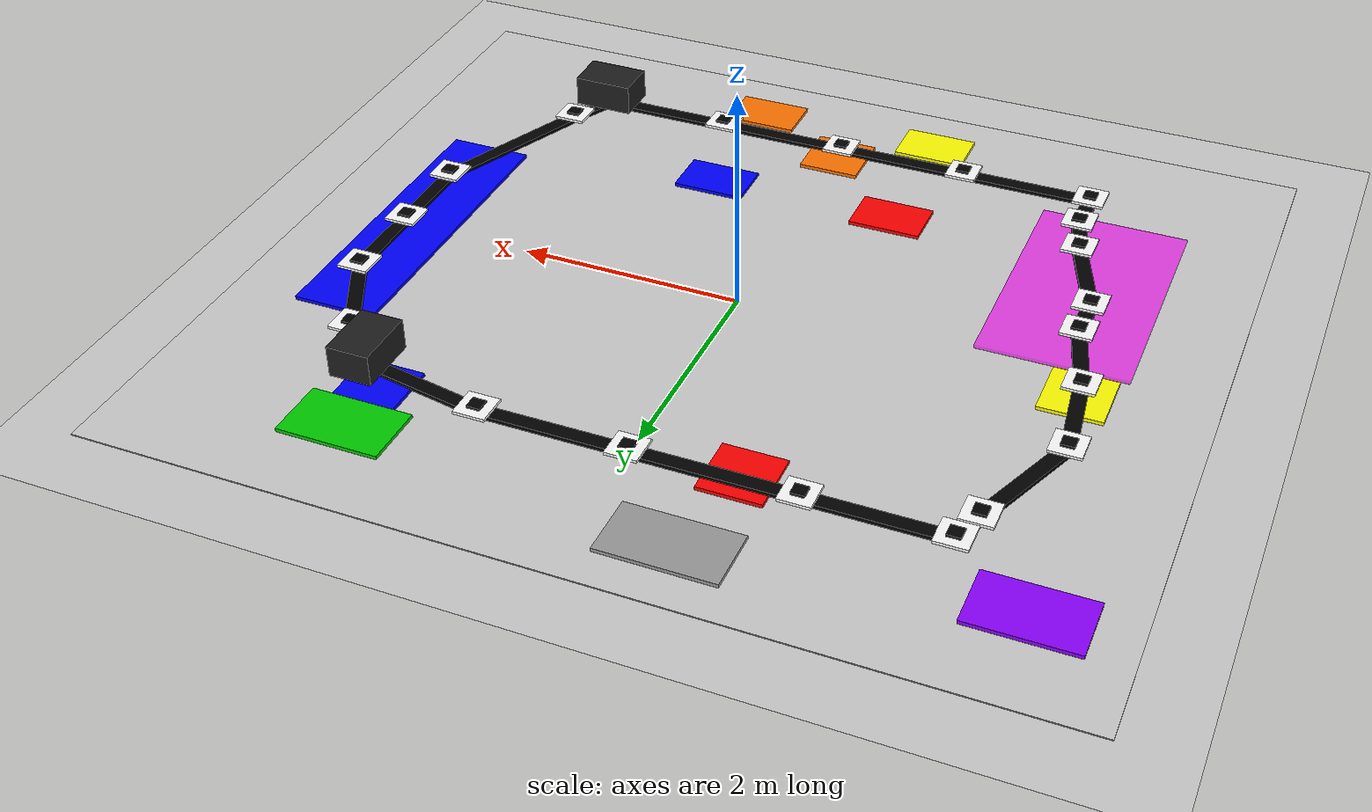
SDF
<?xml version="1.0" ?>
<sdf version="1.6">
  <world name="agv_factory_world">

    <include>
      <uri>model://sun</uri>
    </include>

    <include>
      <uri>model://ground_plane</uri>
    </include>

    <model name="map_base">
      <static>true</static>
      <pose>0.000 0.000 0.005 0 0 0.000</pose>
      <link name="link">
        <visual name="visual">
          <geometry>
            <box>
              <size>8.200 7.200 0.010</size>
            </box>
          </geometry>

          <material>
            <ambient>0.8 0.8 0.8 1</ambient>
            <diffuse>0.8 0.8 0.8 1</diffuse>
          </material>
        </visual>
        <collision name="collision">
          <geometry>
            <box>
              <size>8.200 7.200 0.010</size>
            </box>
          </geometry>
        </collision>
      </link>
    </model>

    <model name="inout_zone">
      <static>true</static>
      <pose>-3.300 2.700 0.025 0 0 0.000</pose>
      <link name="link">
        <visual name="visual">
          <geometry>
            <box>
              <size>0.900 0.550 0.035</size>
            </box>
          </geometry>

          <material>
            <ambient>0.55 0 1 1</ambient>
            <diffuse>0.55 0 1 1</diffuse>
          </material>
        </visual>
        <collision name="collision">
          <geometry>
            <box>
              <size>0.900 0.550 0.035</size>
            </box>
          </geometry>
        </collision>
      </link>
    </model>

    <model name="final_box_zone">
      <static>true</static>
      <pose>-0.700 3.000 0.025 0 0 0.000</pose>
      <link name="link">
        <visual name="visual">
          <geometry>
            <box>
              <size>1.000 0.550 0.035</size>
            </box>
          </geometry>

          <material>
            <ambient>0.6 0.6 0.6 1</ambient>
            <diffuse>0.6 0.6 0.6 1</diffuse>
          </material>
        </visual>
        <collision name="collision">
          <geometry>
            <box>
              <size>1.000 0.550 0.035</size>
            </box>
          </geometry>
        </collision>
      </link>
    </model>

    <model name="part_pickup_zone">
      <static>true</static>
      <pose>2.200 2.700 0.025 0 0 0.000</pose>
      <link name="link">
        <visual name="visual">
          <geometry>
            <box>
              <size>0.900 0.550 0.035</size>
            </box>
          </geometry>

          <material>
            <ambient>0 0.8 0 1</ambient>
            <diffuse>0 0.8 0 1</diffuse>
          </material>
        </visual>
        <collision name="collision">
          <geometry>
            <box>
              <size>0.900 0.550 0.035</size>
            </box>
          </geometry>
        </collision>
      </link>
    </model>

    <model name="red_zone">
      <static>true</static>
      <pose>-0.900 2.100 0.025 0 0 0.000</pose>
      <link name="link">
        <visual name="visual">
          <geometry>
            <box>
              <size>0.550 0.550 0.035</size>
            </box>
          </geometry>

          <material>
            <ambient>1 0 0 1</ambient>
            <diffuse>1 0 0 1</diffuse>
          </material>
        </visual>
        <collision name="collision">
          <geometry>
            <box>
              <size>0.550 0.550 0.035</size>
            </box>
          </geometry>
        </collision>
      </link>
    </model>

    <model name="blue_zone">
      <static>true</static>
      <pose>2.200 2.200 0.025 0 0 0.000</pose>
      <link name="link">
        <visual name="visual">
          <geometry>
            <box>
              <size>0.550 0.550 0.035</size>
            </box>
          </geometry>

          <material>
            <ambient>0 0 1 1</ambient>
            <diffuse>0 0 1 1</diffuse>
          </material>
        </visual>
        <collision name="collision">
          <geometry>
            <box>
              <size>0.550 0.550 0.035</size>
            </box>
          </geometry>
        </collision>
      </link>
    </model>

    <model name="yellow_zone">
      <static>true</static>
      <pose>-3.000 0.200 0.025 0 0 0.000</pose>
      <link name="link">
        <visual name="visual">
          <geometry>
            <box>
              <size>0.550 0.550 0.035</size>
            </box>
          </geometry>

          <material>
            <ambient>1 1 0 1</ambient>
            <diffuse>1 1 0 1</diffuse>
          </material>
        </visual>
        <collision name="collision">
          <geometry>
            <box>
              <size>0.550 0.550 0.035</size>
            </box>
          </geometry>
        </collision>
      </link>
    </model>

    <model name="orange_zone">
      <static>true</static>
      <pose>0.000 -2.500 0.025 0 0 0.000</pose>
      <link name="link">
        <visual name="visual">
          <geometry>
            <box>
              <size>0.550 0.550 0.035</size>
            </box>
          </geometry>

          <material>
            <ambient>1 0.45 0 1</ambient>
            <diffuse>1 0.45 0 1</diffuse>
          </material>
        </visual>
        <collision name="collision">
          <geometry>
            <box>
              <size>0.550 0.550 0.035</size>
            </box>
          </geometry>
        </collision>
      </link>
    </model>

    <model name="a_part_zone">
      <static>true</static>
      <pose>-0.800 -1.700 0.025 0 0 0.000</pose>
      <link name="link">
        <visual name="visual">
          <geometry>
            <box>
              <size>0.650 0.450 0.035</size>
            </box>
          </geometry>

          <material>
            <ambient>1 0 0 1</ambient>
            <diffuse>1 0 0 1</diffuse>
          </material>
        </visual>
        <collision name="collision">
          <geometry>
            <box>
              <size>0.650 0.450 0.035</size>
            </box>
          </geometry>
        </collision>
      </link>
    </model>

    <model name="b_part_zone">
      <static>true</static>
      <pose>0.900 -1.700 0.025 0 0 0.000</pose>
      <link name="link">
        <visual name="visual">
          <geometry>
            <box>
              <size>0.650 0.450 0.035</size>
            </box>
          </geometry>

          <material>
            <ambient>0 0 1 1</ambient>
            <diffuse>0 0 1 1</diffuse>
          </material>
        </visual>
        <collision name="collision">
          <geometry>
            <box>
              <size>0.650 0.450 0.035</size>
            </box>
          </geometry>
        </collision>
      </link>
    </model>

    <model name="c_part_zone">
      <static>true</static>
      <pose>-0.800 -3.000 0.025 0 0 0.000</pose>
      <link name="link">
        <visual name="visual">
          <geometry>
            <box>
              <size>0.650 0.450 0.035</size>
            </box>
          </geometry>

          <material>
            <ambient>1 1 0 1</ambient>
            <diffuse>1 1 0 1</diffuse>
          </material>
        </visual>
        <collision name="collision">
          <geometry>
            <box>
              <size>0.650 0.450 0.035</size>
            </box>
          </geometry>
        </collision>
      </link>
    </model>

    <model name="d_part_zone">
      <static>true</static>
      <pose>0.900 -3.000 0.025 0 0 0.000</pose>
      <link name="link">
        <visual name="visual">
          <geometry>
            <box>
              <size>0.650 0.450 0.035</size>
            </box>
          </geometry>

          <material>
            <ambient>1 0.45 0 1</ambient>
            <diffuse>1 0.45 0 1</diffuse>
          </material>
        </visual>
        <collision name="collision">
          <geometry>
            <box>
              <size>0.650 0.450 0.035</size>
            </box>
          </geometry>
        </collision>
      </link>
    </model>

    <model name="container_zone">
      <static>true</static>
      <pose>3.100 0.000 0.025 0 0 0.000</pose>
      <link name="link">
        <visual name="visual">
          <geometry>
            <box>
              <size>0.750 2.800 0.035</size>
            </box>
          </geometry>

          <material>
            <ambient>0 0 1 1</ambient>
            <diffuse>0 0 1 1</diffuse>
          </material>
        </visual>
        <collision name="collision">
          <geometry>
            <box>
              <size>0.750 2.800 0.035</size>
            </box>
          </geometry>
        </collision>
      </link>
    </model>

    <model name="cross_zone">
      <static>true</static>
      <pose>-2.700 -1.200 0.040 0 0 0.000</pose>
      <link name="link">
        <visual name="visual">
          <geometry>
            <box>
              <size>1.300 2.200 0.030</size>
            </box>
          </geometry>

          <material>
            <ambient>1 0 1 0.65</ambient>
            <diffuse>1 0 1 0.65</diffuse>
          </material>
        </visual>
        <collision name="collision">
          <geometry>
            <box>
              <size>1.300 2.200 0.030</size>
            </box>
          </geometry>
        </collision>
      </link>
    </model>

    <model name="road_top_1">
      <static>true</static>
      <pose>-2.000 2.200 0.055 0 0 0.000</pose>
      <link name="link">
        <visual name="visual">
          <geometry>
            <box>
              <size>1.200 0.130 0.035</size>
            </box>
          </geometry>

          <material>
            <ambient>0 0 0 1</ambient>
            <diffuse>0 0 0 1</diffuse>
          </material>
        </visual>
        <collision name="collision">
          <geometry>
            <box>
              <size>1.200 0.130 0.035</size>
            </box>
          </geometry>
        </collision>
      </link>
    </model>

    <model name="road_top_2">
      <static>true</static>
      <pose>-0.700 2.200 0.055 0 0 0.000</pose>
      <link name="link">
        <visual name="visual">
          <geometry>
            <box>
              <size>1.400 0.130 0.035</size>
            </box>
          </geometry>

          <material>
            <ambient>0 0 0 1</ambient>
            <diffuse>0 0 0 1</diffuse>
          </material>
        </visual>
        <collision name="collision">
          <geometry>
            <box>
              <size>1.400 0.130 0.035</size>
            </box>
          </geometry>
        </collision>
      </link>
    </model>

    <model name="road_top_3">
      <static>true</static>
      <pose>0.650 2.200 0.055 0 0 0.000</pose>
      <link name="link">
        <visual name="visual">
          <geometry>
            <box>
              <size>1.300 0.130 0.035</size>
            </box>
          </geometry>

          <material>
            <ambient>0 0 0 1</ambient>
            <diffuse>0 0 0 1</diffuse>
          </material>
        </visual>
        <collision name="collision">
          <geometry>
            <box>
              <size>1.300 0.130 0.035</size>
            </box>
          </geometry>
        </collision>
      </link>
    </model>

    <model name="road_top_4">
      <static>true</static>
      <pose>1.850 2.100 0.055 0 0 -0.180</pose>
      <link name="link">
        <visual name="visual">
          <geometry>
            <box>
              <size>1.118 0.130 0.035</size>
            </box>
          </geometry>

          <material>
            <ambient>0 0 0 1</ambient>
            <diffuse>0 0 0 1</diffuse>
          </material>
        </visual>
        <collision name="collision">
          <geometry>
            <box>
              <size>1.118 0.130 0.035</size>
            </box>
          </geometry>
        </collision>
      </link>
    </model>

    <model name="road_top_5">
      <static>true</static>
      <pose>2.600 1.800 0.055 0 0 -0.785</pose>
      <link name="link">
        <visual name="visual">
          <geometry>
            <box>
              <size>0.566 0.130 0.035</size>
            </box>
          </geometry>

          <material>
            <ambient>0 0 0 1</ambient>
            <diffuse>0 0 0 1</diffuse>
          </material>
        </visual>
        <collision name="collision">
          <geometry>
            <box>
              <size>0.566 0.130 0.035</size>
            </box>
          </geometry>
        </collision>
      </link>
    </model>

    <model name="road_right_6">
      <static>true</static>
      <pose>3.000 1.200 0.055 0 0 -1.107</pose>
      <link name="link">
        <visual name="visual">
          <geometry>
            <box>
              <size>0.894 0.130 0.035</size>
            </box>
          </geometry>

          <material>
            <ambient>0 0 0 1</ambient>
            <diffuse>0 0 0 1</diffuse>
          </material>
        </visual>
        <collision name="collision">
          <geometry>
            <box>
              <size>0.894 0.130 0.035</size>
            </box>
          </geometry>
        </collision>
      </link>
    </model>

    <model name="road_right_7">
      <static>true</static>
      <pose>3.200 0.400 0.055 0 0 -1.571</pose>
      <link name="link">
        <visual name="visual">
          <geometry>
            <box>
              <size>0.800 0.130 0.035</size>
            </box>
          </geometry>

          <material>
            <ambient>0 0 0 1</ambient>
            <diffuse>0 0 0 1</diffuse>
          </material>
        </visual>
        <collision name="collision">
          <geometry>
            <box>
              <size>0.800 0.130 0.035</size>
            </box>
          </geometry>
        </collision>
      </link>
    </model>

    <model name="road_right_8">
      <static>true</static>
      <pose>3.200 -0.400 0.055 0 0 -1.571</pose>
      <link name="link">
        <visual name="visual">
          <geometry>
            <box>
              <size>0.800 0.130 0.035</size>
            </box>
          </geometry>

          <material>
            <ambient>0 0 0 1</ambient>
            <diffuse>0 0 0 1</diffuse>
          </material>
        </visual>
        <collision name="collision">
          <geometry>
            <box>
              <size>0.800 0.130 0.035</size>
            </box>
          </geometry>
        </collision>
      </link>
    </model>

    <model name="road_right_9">
      <static>true</static>
      <pose>2.900 -1.500 0.055 0 0 -1.976</pose>
      <link name="link">
        <visual name="visual">
          <geometry>
            <box>
              <size>1.523 0.130 0.035</size>
            </box>
          </geometry>

          <material>
            <ambient>0 0 0 1</ambient>
            <diffuse>0 0 0 1</diffuse>
          </material>
        </visual>
        <collision name="collision">
          <geometry>
            <box>
              <size>1.523 0.130 0.035</size>
            </box>
          </geometry>
        </collision>
      </link>
    </model>

    <model name="road_right_10">
      <static>true</static>
      <pose>2.500 -2.400 0.055 0 0 -2.034</pose>
      <link name="link">
        <visual name="visual">
          <geometry>
            <box>
              <size>0.447 0.130 0.035</size>
            </box>
          </geometry>

          <material>
            <ambient>0 0 0 1</ambient>
            <diffuse>0 0 0 1</diffuse>
          </material>
        </visual>
        <collision name="collision">
          <geometry>
            <box>
              <size>0.447 0.130 0.035</size>
            </box>
          </geometry>
        </collision>
      </link>
    </model>

    <model name="road_bottom_11">
      <static>true</static>
      <pose>1.800 -2.600 0.055 0 0 3.142</pose>
      <link name="link">
        <visual name="visual">
          <geometry>
            <box>
              <size>1.200 0.130 0.035</size>
            </box>
          </geometry>

          <material>
            <ambient>0 0 0 1</ambient>
            <diffuse>0 0 0 1</diffuse>
          </material>
        </visual>
        <collision name="collision">
          <geometry>
            <box>
              <size>1.200 0.130 0.035</size>
            </box>
          </geometry>
        </collision>
      </link>
    </model>

    <model name="road_bottom_12">
      <static>true</static>
      <pose>0.600 -2.600 0.055 0 0 3.142</pose>
      <link name="link">
        <visual name="visual">
          <geometry>
            <box>
              <size>1.200 0.130 0.035</size>
            </box>
          </geometry>

          <material>
            <ambient>0 0 0 1</ambient>
            <diffuse>0 0 0 1</diffuse>
          </material>
        </visual>
        <collision name="collision">
          <geometry>
            <box>
              <size>1.200 0.130 0.035</size>
            </box>
          </geometry>
        </collision>
      </link>
    </model>

    <model name="road_bottom_13">
      <static>true</static>
      <pose>-0.600 -2.600 0.055 0 0 3.142</pose>
      <link name="link">
        <visual name="visual">
          <geometry>
            <box>
              <size>1.200 0.130 0.035</size>
            </box>
          </geometry>

          <material>
            <ambient>0 0 0 1</ambient>
            <diffuse>0 0 0 1</diffuse>
          </material>
        </visual>
        <collision name="collision">
          <geometry>
            <box>
              <size>1.200 0.130 0.035</size>
            </box>
          </geometry>
        </collision>
      </link>
    </model>

    <model name="road_bottom_14">
      <static>true</static>
      <pose>-1.800 -2.600 0.055 0 0 3.142</pose>
      <link name="link">
        <visual name="visual">
          <geometry>
            <box>
              <size>1.200 0.130 0.035</size>
            </box>
          </geometry>

          <material>
            <ambient>0 0 0 1</ambient>
            <diffuse>0 0 0 1</diffuse>
          </material>
        </visual>
        <collision name="collision">
          <geometry>
            <box>
              <size>1.200 0.130 0.035</size>
            </box>
          </geometry>
        </collision>
      </link>
    </model>

    <model name="road_bottom_15">
      <static>true</static>
      <pose>-2.400 -2.400 0.055 0 0 1.571</pose>
      <link name="link">
        <visual name="visual">
          <geometry>
            <box>
              <size>0.400 0.130 0.035</size>
            </box>
          </geometry>

          <material>
            <ambient>0 0 0 1</ambient>
            <diffuse>0 0 0 1</diffuse>
          </material>
        </visual>
        <collision name="collision">
          <geometry>
            <box>
              <size>0.400 0.130 0.035</size>
            </box>
          </geometry>
        </collision>
      </link>
    </model>

    <model name="road_left_16">
      <static>true</static>
      <pose>-2.450 -2.000 0.055 0 0 1.816</pose>
      <link name="link">
        <visual name="visual">
          <geometry>
            <box>
              <size>0.412 0.130 0.035</size>
            </box>
          </geometry>

          <material>
            <ambient>0 0 0 1</ambient>
            <diffuse>0 0 0 1</diffuse>
          </material>
        </visual>
        <collision name="collision">
          <geometry>
            <box>
              <size>0.412 0.130 0.035</size>
            </box>
          </geometry>
        </collision>
      </link>
    </model>

    <model name="road_left_17">
      <static>true</static>
      <pose>-2.650 -1.400 0.055 0 0 1.930</pose>
      <link name="link">
        <visual name="visual">
          <geometry>
            <box>
              <size>0.854 0.130 0.035</size>
            </box>
          </geometry>

          <material>
            <ambient>0 0 0 1</ambient>
            <diffuse>0 0 0 1</diffuse>
          </material>
        </visual>
        <collision name="collision">
          <geometry>
            <box>
              <size>0.854 0.130 0.035</size>
            </box>
          </geometry>
        </collision>
      </link>
    </model>

    <model name="road_left_18">
      <static>true</static>
      <pose>-2.800 -0.800 0.055 0 0 1.571</pose>
      <link name="link">
        <visual name="visual">
          <geometry>
            <box>
              <size>0.400 0.130 0.035</size>
            </box>
          </geometry>

          <material>
            <ambient>0 0 0 1</ambient>
            <diffuse>0 0 0 1</diffuse>
          </material>
        </visual>
        <collision name="collision">
          <geometry>
            <box>
              <size>0.400 0.130 0.035</size>
            </box>
          </geometry>
        </collision>
      </link>
    </model>

    <model name="road_left_19">
      <static>true</static>
      <pose>-2.900 -0.250 0.055 0 0 1.849</pose>
      <link name="link">
        <visual name="visual">
          <geometry>
            <box>
              <size>0.728 0.130 0.035</size>
            </box>
          </geometry>

          <material>
            <ambient>0 0 0 1</ambient>
            <diffuse>0 0 0 1</diffuse>
          </material>
        </visual>
        <collision name="collision">
          <geometry>
            <box>
              <size>0.728 0.130 0.035</size>
            </box>
          </geometry>
        </collision>
      </link>
    </model>

    <model name="road_left_20">
      <static>true</static>
      <pose>-3.050 0.500 0.055 0 0 1.695</pose>
      <link name="link">
        <visual name="visual">
          <geometry>
            <box>
              <size>0.806 0.130 0.035</size>
            </box>
          </geometry>

          <material>
            <ambient>0 0 0 1</ambient>
            <diffuse>0 0 0 1</diffuse>
          </material>
        </visual>
        <collision name="collision">
          <geometry>
            <box>
              <size>0.806 0.130 0.035</size>
            </box>
          </geometry>
        </collision>
      </link>
    </model>

    <model name="road_left_21">
      <static>true</static>
      <pose>-2.900 1.400 0.055 0 0 1.190</pose>
      <link name="link">
        <visual name="visual">
          <geometry>
            <box>
              <size>1.077 0.130 0.035</size>
            </box>
          </geometry>

          <material>
            <ambient>0 0 0 1</ambient>
            <diffuse>0 0 0 1</diffuse>
          </material>
        </visual>
        <collision name="collision">
          <geometry>
            <box>
              <size>1.077 0.130 0.035</size>
            </box>
          </geometry>
        </collision>
      </link>
    </model>

    <model name="road_left_22">
      <static>true</static>
      <pose>-2.650 2.050 0.055 0 0 1.249</pose>
      <link name="link">
        <visual name="visual">
          <geometry>
            <box>
              <size>0.316 0.130 0.035</size>
            </box>
          </geometry>

          <material>
            <ambient>0 0 0 1</ambient>
            <diffuse>0 0 0 1</diffuse>
          </material>
        </visual>
        <collision name="collision">
          <geometry>
            <box>
              <size>0.316 0.130 0.035</size>
            </box>
          </geometry>
        </collision>
      </link>
    </model>

    <model name="QR_TOP_01">
      <static>true</static>
      <pose>-2.600 2.200 0.095 0 0 0.000</pose>
      <link name="link">
        <visual name="visual">
          <geometry>
            <box>
              <size>0.280 0.280 0.025</size>
            </box>
          </geometry>

          <material>
            <ambient>1 1 1 1</ambient>
            <diffuse>1 1 1 1</diffuse>
          </material>
        </visual>
        <collision name="collision">
          <geometry>
            <box>
              <size>0.280 0.280 0.025</size>
            </box>
          </geometry>
        </collision>
      </link>
    </model>

    <model name="QR_TOP_01_black">
      <static>true</static>
      <pose>-2.600 2.200 0.115 0 0 0.000</pose>
      <link name="link">
        <visual name="visual">
          <geometry>
            <box>
              <size>0.120 0.120 0.025</size>
            </box>
          </geometry>

          <material>
            <ambient>0 0 0 1</ambient>
            <diffuse>0 0 0 1</diffuse>
          </material>
        </visual>
        <collision name="collision">
          <geometry>
            <box>
              <size>0.120 0.120 0.025</size>
            </box>
          </geometry>
        </collision>
      </link>
    </model>

    <model name="QR_TOP_02">
      <static>true</static>
      <pose>-1.400 2.200 0.095 0 0 0.000</pose>
      <link name="link">
        <visual name="visual">
          <geometry>
            <box>
              <size>0.280 0.280 0.025</size>
            </box>
          </geometry>

          <material>
            <ambient>1 1 1 1</ambient>
            <diffuse>1 1 1 1</diffuse>
          </material>
        </visual>
        <collision name="collision">
          <geometry>
            <box>
              <size>0.280 0.280 0.025</size>
            </box>
          </geometry>
        </collision>
      </link>
    </model>

    <model name="QR_TOP_02_black">
      <static>true</static>
      <pose>-1.400 2.200 0.115 0 0 0.000</pose>
      <link name="link">
        <visual name="visual">
          <geometry>
            <box>
              <size>0.120 0.120 0.025</size>
            </box>
          </geometry>

          <material>
            <ambient>0 0 0 1</ambient>
            <diffuse>0 0 0 1</diffuse>
          </material>
        </visual>
        <collision name="collision">
          <geometry>
            <box>
              <size>0.120 0.120 0.025</size>
            </box>
          </geometry>
        </collision>
      </link>
    </model>

    <model name="QR_TOP_03">
      <static>true</static>
      <pose>0.000 2.200 0.095 0 0 0.000</pose>
      <link name="link">
        <visual name="visual">
          <geometry>
            <box>
              <size>0.280 0.280 0.025</size>
            </box>
          </geometry>

          <material>
            <ambient>1 1 1 1</ambient>
            <diffuse>1 1 1 1</diffuse>
          </material>
        </visual>
        <collision name="collision">
          <geometry>
            <box>
              <size>0.280 0.280 0.025</size>
            </box>
          </geometry>
        </collision>
      </link>
    </model>

    <model name="QR_TOP_03_black">
      <static>true</static>
      <pose>0.000 2.200 0.115 0 0 0.000</pose>
      <link name="link">
        <visual name="visual">
          <geometry>
            <box>
              <size>0.120 0.120 0.025</size>
            </box>
          </geometry>

          <material>
            <ambient>0 0 0 1</ambient>
            <diffuse>0 0 0 1</diffuse>
          </material>
        </visual>
        <collision name="collision">
          <geometry>
            <box>
              <size>0.120 0.120 0.025</size>
            </box>
          </geometry>
        </collision>
      </link>
    </model>

    <model name="QR_TOP_04">
      <static>true</static>
      <pose>1.300 2.200 0.095 0 0 0.000</pose>
      <link name="link">
        <visual name="visual">
          <geometry>
            <box>
              <size>0.280 0.280 0.025</size>
            </box>
          </geometry>

          <material>
            <ambient>1 1 1 1</ambient>
            <diffuse>1 1 1 1</diffuse>
          </material>
        </visual>
        <collision name="collision">
          <geometry>
            <box>
              <size>0.280 0.280 0.025</size>
            </box>
          </geometry>
        </collision>
      </link>
    </model>

    <model name="QR_TOP_04_black">
      <static>true</static>
      <pose>1.300 2.200 0.115 0 0 0.000</pose>
      <link name="link">
        <visual name="visual">
          <geometry>
            <box>
              <size>0.120 0.120 0.025</size>
            </box>
          </geometry>

          <material>
            <ambient>0 0 0 1</ambient>
            <diffuse>0 0 0 1</diffuse>
          </material>
        </visual>
        <collision name="collision">
          <geometry>
            <box>
              <size>0.120 0.120 0.025</size>
            </box>
          </geometry>
        </collision>
      </link>
    </model>

    <model name="QR_TOP_05">
      <static>true</static>
      <pose>2.400 2.000 0.095 0 0 0.000</pose>
      <link name="link">
        <visual name="visual">
          <geometry>
            <box>
              <size>0.280 0.280 0.025</size>
            </box>
          </geometry>

          <material>
            <ambient>1 1 1 1</ambient>
            <diffuse>1 1 1 1</diffuse>
          </material>
        </visual>
        <collision name="collision">
          <geometry>
            <box>
              <size>0.280 0.280 0.025</size>
            </box>
          </geometry>
        </collision>
      </link>
    </model>

    <model name="QR_TOP_05_black">
      <static>true</static>
      <pose>2.400 2.000 0.115 0 0 0.000</pose>
      <link name="link">
        <visual name="visual">
          <geometry>
            <box>
              <size>0.120 0.120 0.025</size>
            </box>
          </geometry>

          <material>
            <ambient>0 0 0 1</ambient>
            <diffuse>0 0 0 1</diffuse>
          </material>
        </visual>
        <collision name="collision">
          <geometry>
            <box>
              <size>0.120 0.120 0.025</size>
            </box>
          </geometry>
        </collision>
      </link>
    </model>

    <model name="QR_RIGHT_01">
      <static>true</static>
      <pose>2.800 1.600 0.095 0 0 0.000</pose>
      <link name="link">
        <visual name="visual">
          <geometry>
            <box>
              <size>0.280 0.280 0.025</size>
            </box>
          </geometry>

          <material>
            <ambient>1 1 1 1</ambient>
            <diffuse>1 1 1 1</diffuse>
          </material>
        </visual>
        <collision name="collision">
          <geometry>
            <box>
              <size>0.280 0.280 0.025</size>
            </box>
          </geometry>
        </collision>
      </link>
    </model>

    <model name="QR_RIGHT_01_black">
      <static>true</static>
      <pose>2.800 1.600 0.115 0 0 0.000</pose>
      <link name="link">
        <visual name="visual">
          <geometry>
            <box>
              <size>0.120 0.120 0.025</size>
            </box>
          </geometry>

          <material>
            <ambient>0 0 0 1</ambient>
            <diffuse>0 0 0 1</diffuse>
          </material>
        </visual>
        <collision name="collision">
          <geometry>
            <box>
              <size>0.120 0.120 0.025</size>
            </box>
          </geometry>
        </collision>
      </link>
    </model>

    <model name="QR_RIGHT_02">
      <static>true</static>
      <pose>3.200 0.800 0.095 0 0 0.000</pose>
      <link name="link">
        <visual name="visual">
          <geometry>
            <box>
              <size>0.280 0.280 0.025</size>
            </box>
          </geometry>

          <material>
            <ambient>1 1 1 1</ambient>
            <diffuse>1 1 1 1</diffuse>
          </material>
        </visual>
        <collision name="collision">
          <geometry>
            <box>
              <size>0.280 0.280 0.025</size>
            </box>
          </geometry>
        </collision>
      </link>
    </model>

    <model name="QR_RIGHT_02_black">
      <static>true</static>
      <pose>3.200 0.800 0.115 0 0 0.000</pose>
      <link name="link">
        <visual name="visual">
          <geometry>
            <box>
              <size>0.120 0.120 0.025</size>
            </box>
          </geometry>

          <material>
            <ambient>0 0 0 1</ambient>
            <diffuse>0 0 0 1</diffuse>
          </material>
        </visual>
        <collision name="collision">
          <geometry>
            <box>
              <size>0.120 0.120 0.025</size>
            </box>
          </geometry>
        </collision>
      </link>
    </model>

    <model name="QR_RIGHT_03">
      <static>true</static>
      <pose>3.200 0.000 0.095 0 0 0.000</pose>
      <link name="link">
        <visual name="visual">
          <geometry>
            <box>
              <size>0.280 0.280 0.025</size>
            </box>
          </geometry>

          <material>
            <ambient>1 1 1 1</ambient>
            <diffuse>1 1 1 1</diffuse>
          </material>
        </visual>
        <collision name="collision">
          <geometry>
            <box>
              <size>0.280 0.280 0.025</size>
            </box>
          </geometry>
        </collision>
      </link>
    </model>

    <model name="QR_RIGHT_03_black">
      <static>true</static>
      <pose>3.200 0.000 0.115 0 0 0.000</pose>
      <link name="link">
        <visual name="visual">
          <geometry>
            <box>
              <size>0.120 0.120 0.025</size>
            </box>
          </geometry>

          <material>
            <ambient>0 0 0 1</ambient>
            <diffuse>0 0 0 1</diffuse>
          </material>
        </visual>
        <collision name="collision">
          <geometry>
            <box>
              <size>0.120 0.120 0.025</size>
            </box>
          </geometry>
        </collision>
      </link>
    </model>

    <model name="QR_RIGHT_04">
      <static>true</static>
      <pose>3.200 -0.800 0.095 0 0 0.000</pose>
      <link name="link">
        <visual name="visual">
          <geometry>
            <box>
              <size>0.280 0.280 0.025</size>
            </box>
          </geometry>

          <material>
            <ambient>1 1 1 1</ambient>
            <diffuse>1 1 1 1</diffuse>
          </material>
        </visual>
        <collision name="collision">
          <geometry>
            <box>
              <size>0.280 0.280 0.025</size>
            </box>
          </geometry>
        </collision>
      </link>
    </model>

    <model name="QR_RIGHT_04_black">
      <static>true</static>
      <pose>3.200 -0.800 0.115 0 0 0.000</pose>
      <link name="link">
        <visual name="visual">
          <geometry>
            <box>
              <size>0.120 0.120 0.025</size>
            </box>
          </geometry>

          <material>
            <ambient>0 0 0 1</ambient>
            <diffuse>0 0 0 1</diffuse>
          </material>
        </visual>
        <collision name="collision">
          <geometry>
            <box>
              <size>0.120 0.120 0.025</size>
            </box>
          </geometry>
        </collision>
      </link>
    </model>

    <model name="QR_RIGHT_05">
      <static>true</static>
      <pose>2.600 -2.200 0.095 0 0 0.000</pose>
      <link name="link">
        <visual name="visual">
          <geometry>
            <box>
              <size>0.280 0.280 0.025</size>
            </box>
          </geometry>

          <material>
            <ambient>1 1 1 1</ambient>
            <diffuse>1 1 1 1</diffuse>
          </material>
        </visual>
        <collision name="collision">
          <geometry>
            <box>
              <size>0.280 0.280 0.025</size>
            </box>
          </geometry>
        </collision>
      </link>
    </model>

    <model name="QR_RIGHT_05_black">
      <static>true</static>
      <pose>2.600 -2.200 0.115 0 0 0.000</pose>
      <link name="link">
        <visual name="visual">
          <geometry>
            <box>
              <size>0.120 0.120 0.025</size>
            </box>
          </geometry>

          <material>
            <ambient>0 0 0 1</ambient>
            <diffuse>0 0 0 1</diffuse>
          </material>
        </visual>
        <collision name="collision">
          <geometry>
            <box>
              <size>0.120 0.120 0.025</size>
            </box>
          </geometry>
        </collision>
      </link>
    </model>

    <model name="QR_BOTTOM_01">
      <static>true</static>
      <pose>-2.400 -2.600 0.095 0 0 0.000</pose>
      <link name="link">
        <visual name="visual">
          <geometry>
            <box>
              <size>0.280 0.280 0.025</size>
            </box>
          </geometry>

          <material>
            <ambient>1 1 1 1</ambient>
            <diffuse>1 1 1 1</diffuse>
          </material>
        </visual>
        <collision name="collision">
          <geometry>
            <box>
              <size>0.280 0.280 0.025</size>
            </box>
          </geometry>
        </collision>
      </link>
    </model>

    <model name="QR_BOTTOM_01_black">
      <static>true</static>
      <pose>-2.400 -2.600 0.115 0 0 0.000</pose>
      <link name="link">
        <visual name="visual">
          <geometry>
            <box>
              <size>0.120 0.120 0.025</size>
            </box>
          </geometry>

          <material>
            <ambient>0 0 0 1</ambient>
            <diffuse>0 0 0 1</diffuse>
          </material>
        </visual>
        <collision name="collision">
          <geometry>
            <box>
              <size>0.120 0.120 0.025</size>
            </box>
          </geometry>
        </collision>
      </link>
    </model>

    <model name="QR_BOTTOM_02">
      <static>true</static>
      <pose>-1.200 -2.600 0.095 0 0 0.000</pose>
      <link name="link">
        <visual name="visual">
          <geometry>
            <box>
              <size>0.280 0.280 0.025</size>
            </box>
          </geometry>

          <material>
            <ambient>1 1 1 1</ambient>
            <diffuse>1 1 1 1</diffuse>
          </material>
        </visual>
        <collision name="collision">
          <geometry>
            <box>
              <size>0.280 0.280 0.025</size>
            </box>
          </geometry>
        </collision>
      </link>
    </model>

    <model name="QR_BOTTOM_02_black">
      <static>true</static>
      <pose>-1.200 -2.600 0.115 0 0 0.000</pose>
      <link name="link">
        <visual name="visual">
          <geometry>
            <box>
              <size>0.120 0.120 0.025</size>
            </box>
          </geometry>

          <material>
            <ambient>0 0 0 1</ambient>
            <diffuse>0 0 0 1</diffuse>
          </material>
        </visual>
        <collision name="collision">
          <geometry>
            <box>
              <size>0.120 0.120 0.025</size>
            </box>
          </geometry>
        </collision>
      </link>
    </model>

    <model name="QR_BOTTOM_03">
      <static>true</static>
      <pose>0.000 -2.600 0.095 0 0 0.000</pose>
      <link name="link">
        <visual name="visual">
          <geometry>
            <box>
              <size>0.280 0.280 0.025</size>
            </box>
          </geometry>

          <material>
            <ambient>1 1 1 1</ambient>
            <diffuse>1 1 1 1</diffuse>
          </material>
        </visual>
        <collision name="collision">
          <geometry>
            <box>
              <size>0.280 0.280 0.025</size>
            </box>
          </geometry>
        </collision>
      </link>
    </model>

    <model name="QR_BOTTOM_03_black">
      <static>true</static>
      <pose>0.000 -2.600 0.115 0 0 0.000</pose>
      <link name="link">
        <visual name="visual">
          <geometry>
            <box>
              <size>0.120 0.120 0.025</size>
            </box>
          </geometry>

          <material>
            <ambient>0 0 0 1</ambient>
            <diffuse>0 0 0 1</diffuse>
          </material>
        </visual>
        <collision name="collision">
          <geometry>
            <box>
              <size>0.120 0.120 0.025</size>
            </box>
          </geometry>
        </collision>
      </link>
    </model>

    <model name="QR_BOTTOM_04">
      <static>true</static>
      <pose>1.200 -2.600 0.095 0 0 0.000</pose>
      <link name="link">
        <visual name="visual">
          <geometry>
            <box>
              <size>0.280 0.280 0.025</size>
            </box>
          </geometry>

          <material>
            <ambient>1 1 1 1</ambient>
            <diffuse>1 1 1 1</diffuse>
          </material>
        </visual>
        <collision name="collision">
          <geometry>
            <box>
              <size>0.280 0.280 0.025</size>
            </box>
          </geometry>
        </collision>
      </link>
    </model>

    <model name="QR_BOTTOM_04_black">
      <static>true</static>
      <pose>1.200 -2.600 0.115 0 0 0.000</pose>
      <link name="link">
        <visual name="visual">
          <geometry>
            <box>
              <size>0.120 0.120 0.025</size>
            </box>
          </geometry>

          <material>
            <ambient>0 0 0 1</ambient>
            <diffuse>0 0 0 1</diffuse>
          </material>
        </visual>
        <collision name="collision">
          <geometry>
            <box>
              <size>0.120 0.120 0.025</size>
            </box>
          </geometry>
        </collision>
      </link>
    </model>

    <model name="QR_BOTTOM_05">
      <static>true</static>
      <pose>2.400 -2.600 0.095 0 0 0.000</pose>
      <link name="link">
        <visual name="visual">
          <geometry>
            <box>
              <size>0.280 0.280 0.025</size>
            </box>
          </geometry>

          <material>
            <ambient>1 1 1 1</ambient>
            <diffuse>1 1 1 1</diffuse>
          </material>
        </visual>
        <collision name="collision">
          <geometry>
            <box>
              <size>0.280 0.280 0.025</size>
            </box>
          </geometry>
        </collision>
      </link>
    </model>

    <model name="QR_BOTTOM_05_black">
      <static>true</static>
      <pose>2.400 -2.600 0.115 0 0 0.000</pose>
      <link name="link">
        <visual name="visual">
          <geometry>
            <box>
              <size>0.120 0.120 0.025</size>
            </box>
          </geometry>

          <material>
            <ambient>0 0 0 1</ambient>
            <diffuse>0 0 0 1</diffuse>
          </material>
        </visual>
        <collision name="collision">
          <geometry>
            <box>
              <size>0.120 0.120 0.025</size>
            </box>
          </geometry>
        </collision>
      </link>
    </model>

    <model name="QR_LEFT_01">
      <static>true</static>
      <pose>-2.700 1.900 0.095 0 0 0.000</pose>
      <link name="link">
        <visual name="visual">
          <geometry>
            <box>
              <size>0.280 0.280 0.025</size>
            </box>
          </geometry>

          <material>
            <ambient>1 1 1 1</ambient>
            <diffuse>1 1 1 1</diffuse>
          </material>
        </visual>
        <collision name="collision">
          <geometry>
            <box>
              <size>0.280 0.280 0.025</size>
            </box>
          </geometry>
        </collision>
      </link>
    </model>

    <model name="QR_LEFT_01_black">
      <static>true</static>
      <pose>-2.700 1.900 0.115 0 0 0.000</pose>
      <link name="link">
        <visual name="visual">
          <geometry>
            <box>
              <size>0.120 0.120 0.025</size>
            </box>
          </geometry>

          <material>
            <ambient>0 0 0 1</ambient>
            <diffuse>0 0 0 1</diffuse>
          </material>
        </visual>
        <collision name="collision">
          <geometry>
            <box>
              <size>0.120 0.120 0.025</size>
            </box>
          </geometry>
        </collision>
      </link>
    </model>

    <model name="QR_LEFT_02">
      <static>true</static>
      <pose>-3.100 0.900 0.095 0 0 0.000</pose>
      <link name="link">
        <visual name="visual">
          <geometry>
            <box>
              <size>0.280 0.280 0.025</size>
            </box>
          </geometry>

          <material>
            <ambient>1 1 1 1</ambient>
            <diffuse>1 1 1 1</diffuse>
          </material>
        </visual>
        <collision name="collision">
          <geometry>
            <box>
              <size>0.280 0.280 0.025</size>
            </box>
          </geometry>
        </collision>
      </link>
    </model>

    <model name="QR_LEFT_02_black">
      <static>true</static>
      <pose>-3.100 0.900 0.115 0 0 0.000</pose>
      <link name="link">
        <visual name="visual">
          <geometry>
            <box>
              <size>0.120 0.120 0.025</size>
            </box>
          </geometry>

          <material>
            <ambient>0 0 0 1</ambient>
            <diffuse>0 0 0 1</diffuse>
          </material>
        </visual>
        <collision name="collision">
          <geometry>
            <box>
              <size>0.120 0.120 0.025</size>
            </box>
          </geometry>
        </collision>
      </link>
    </model>

    <model name="QR_LEFT_03">
      <static>true</static>
      <pose>-3.000 0.100 0.095 0 0 0.000</pose>
      <link name="link">
        <visual name="visual">
          <geometry>
            <box>
              <size>0.280 0.280 0.025</size>
            </box>
          </geometry>

          <material>
            <ambient>1 1 1 1</ambient>
            <diffuse>1 1 1 1</diffuse>
          </material>
        </visual>
        <collision name="collision">
          <geometry>
            <box>
              <size>0.280 0.280 0.025</size>
            </box>
          </geometry>
        </collision>
      </link>
    </model>

    <model name="QR_LEFT_03_black">
      <static>true</static>
      <pose>-3.000 0.100 0.115 0 0 0.000</pose>
      <link name="link">
        <visual name="visual">
          <geometry>
            <box>
              <size>0.120 0.120 0.025</size>
            </box>
          </geometry>

          <material>
            <ambient>0 0 0 1</ambient>
            <diffuse>0 0 0 1</diffuse>
          </material>
        </visual>
        <collision name="collision">
          <geometry>
            <box>
              <size>0.120 0.120 0.025</size>
            </box>
          </geometry>
        </collision>
      </link>
    </model>

    <model name="QR_LEFT_04">
      <static>true</static>
      <pose>-2.800 -1.000 0.095 0 0 0.000</pose>
      <link name="link">
        <visual name="visual">
          <geometry>
            <box>
              <size>0.280 0.280 0.025</size>
            </box>
          </geometry>

          <material>
            <ambient>1 1 1 1</ambient>
            <diffuse>1 1 1 1</diffuse>
          </material>
        </visual>
        <collision name="collision">
          <geometry>
            <box>
              <size>0.280 0.280 0.025</size>
            </box>
          </geometry>
        </collision>
      </link>
    </model>

    <model name="QR_LEFT_04_black">
      <static>true</static>
      <pose>-2.800 -1.000 0.115 0 0 0.000</pose>
      <link name="link">
        <visual name="visual">
          <geometry>
            <box>
              <size>0.120 0.120 0.025</size>
            </box>
          </geometry>

          <material>
            <ambient>0 0 0 1</ambient>
            <diffuse>0 0 0 1</diffuse>
          </material>
        </visual>
        <collision name="collision">
          <geometry>
            <box>
              <size>0.120 0.120 0.025</size>
            </box>
          </geometry>
        </collision>
      </link>
    </model>

    <model name="QR_LEFT_05">
      <static>true</static>
      <pose>-2.400 -2.200 0.095 0 0 0.000</pose>
      <link name="link">
        <visual name="visual">
          <geometry>
            <box>
              <size>0.280 0.280 0.025</size>
            </box>
          </geometry>

          <material>
            <ambient>1 1 1 1</ambient>
            <diffuse>1 1 1 1</diffuse>
          </material>
        </visual>
        <collision name="collision">
          <geometry>
            <box>
              <size>0.280 0.280 0.025</size>
            </box>
          </geometry>
        </collision>
      </link>
    </model>

    <model name="QR_LEFT_05_black">
      <static>true</static>
      <pose>-2.400 -2.200 0.115 0 0 0.000</pose>
      <link name="link">
        <visual name="visual">
          <geometry>
            <box>
              <size>0.120 0.120 0.025</size>
            </box>
          </geometry>

          <material>
            <ambient>0 0 0 1</ambient>
            <diffuse>0 0 0 1</diffuse>
          </material>
        </visual>
        <collision name="collision">
          <geometry>
            <box>
              <size>0.120 0.120 0.025</size>
            </box>
          </geometry>
        </collision>
      </link>
    </model>

    <model name="QR_CROSS_ENTRY">
      <static>true</static>
      <pose>-2.800 -0.600 0.095 0 0 0.000</pose>
      <link name="link">
        <visual name="visual">
          <geometry>
            <box>
              <size>0.280 0.280 0.025</size>
            </box>
          </geometry>

          <material>
            <ambient>1 1 1 1</ambient>
            <diffuse>1 1 1 1</diffuse>
          </material>
        </visual>
        <collision name="collision">
          <geometry>
            <box>
              <size>0.280 0.280 0.025</size>
            </box>
          </geometry>
        </collision>
      </link>
    </model>

    <model name="QR_CROSS_ENTRY_black">
      <static>true</static>
      <pose>-2.800 -0.600 0.115 0 0 0.000</pose>
      <link name="link">
        <visual name="visual">
          <geometry>
            <box>
              <size>0.120 0.120 0.025</size>
            </box>
          </geometry>

          <material>
            <ambient>0 0 0 1</ambient>
            <diffuse>0 0 0 1</diffuse>
          </material>
        </visual>
        <collision name="collision">
          <geometry>
            <box>
              <size>0.120 0.120 0.025</size>
            </box>
          </geometry>
        </collision>
      </link>
    </model>

    <model name="QR_CROSS_EXIT">
      <static>true</static>
      <pose>-2.500 -1.800 0.095 0 0 0.000</pose>
      <link name="link">
        <visual name="visual">
          <geometry>
            <box>
              <size>0.280 0.280 0.025</size>
            </box>
          </geometry>

          <material>
            <ambient>1 1 1 1</ambient>
            <diffuse>1 1 1 1</diffuse>
          </material>
        </visual>
        <collision name="collision">
          <geometry>
            <box>
              <size>0.280 0.280 0.025</size>
            </box>
          </geometry>
        </collision>
      </link>
    </model>

    <model name="QR_CROSS_EXIT_black">
      <static>true</static>
      <pose>-2.500 -1.800 0.115 0 0 0.000</pose>
      <link name="link">
        <visual name="visual">
          <geometry>
            <box>
              <size>0.120 0.120 0.025</size>
            </box>
          </geometry>

          <material>
            <ambient>0 0 0 1</ambient>
            <diffuse>0 0 0 1</diffuse>
          </material>
        </visual>
        <collision name="collision">
          <geometry>
            <box>
              <size>0.120 0.120 0.025</size>
            </box>
          </geometry>
        </collision>
      </link>
    </model>

    <model name="agv01">
      <static>false</static>
      <pose>2.400 -2.600 0.220 0 0 3.140</pose>
      <link name="link">
        <visual name="visual">
          <geometry>
            <box>
              <size>0.550 0.380 0.280</size>
            </box>
          </geometry>

          <material>
            <ambient>0.12 0.12 0.12 1</ambient>
            <diffuse>0.12 0.12 0.12 1</diffuse>
          </material>
        </visual>
        <collision name="collision">
          <geometry>
            <box>
              <size>0.550 0.380 0.280</size>
            </box>
          </geometry>
        </collision>
      </link>
    </model>

    <model name="agv02">
      <static>false</static>
      <pose>2.400 2.000 0.220 0 0 -1.570</pose>
      <link name="link">
        <visual name="visual">
          <geometry>
            <box>
              <size>0.550 0.380 0.280</size>
            </box>
          </geometry>

          <material>
            <ambient>0.12 0.12 0.12 1</ambient>
            <diffuse>0.12 0.12 0.12 1</diffuse>
          </material>
        </visual>
        <collision name="collision">
          <geometry>
            <box>
              <size>0.550 0.380 0.280</size>
            </box>
          </geometry>
        </collision>
      </link>
    </model>

  </world>
</sdf>
